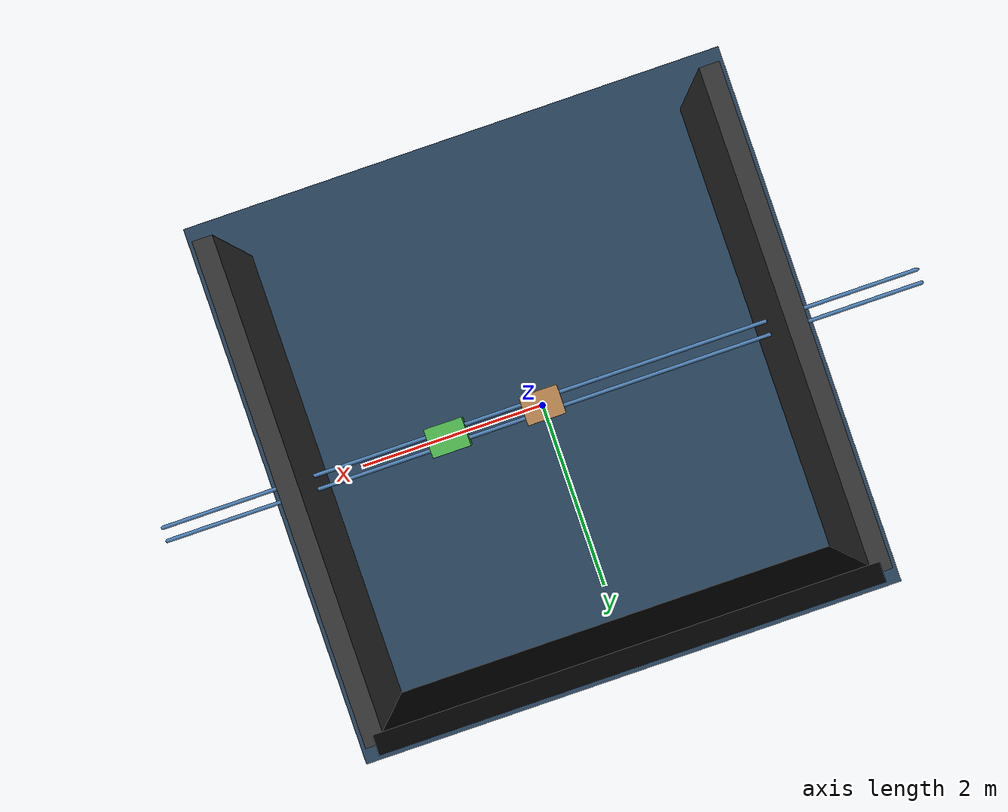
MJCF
<mujoco model="cart">

    <option timestep="0.01" impratio="10" iterations="1" ls_iterations="20">
        <flag contact="enable" gravity="enable" eulerdamp="disable"/>
    </option>

    <!--  reduce contact computation for mjx -->
     <custom>
        <numeric data="15" name="max_contact_points"/>
        <numeric data="15" name="max_geom_pairs"/>
      </custom>

    <visual>
        <headlight ambient=".4 .4 .4" diffuse=".8 .8 .8" specular="0.1 0.1 0.1"/>
        <map znear=".01"/>
        <quality shadowsize="2048"/>
    </visual>

    <asset>
        <texture name="skybox" type="skybox" builtin="gradient" rgb1=".4 .6 .8" rgb2="0 0 0"
                 width="800" height="800" mark="random" markrgb="1 1 1"/>
    </asset>

    <asset>
        <texture name="grid" type="2d" builtin="checker" rgb1=".1 .2 .3" rgb2=".2 .3 .4" width="300" height="300" mark="edge" markrgb=".2 .3 .4"/>
        <material name="grid" texture="grid" texrepeat="1 1" texuniform="true" reflectance=".2"/>
        <material name="self" rgba=".7 .5 .3 1"/>
        <material name="cart2_material" rgba=".3 .7 .3 1"/> <!-- Different color for second cart -->
        <material name="decoration" rgba=".3 .5 .7 1"/>
    </asset>

    <worldbody>
        <light name="light" pos="0 0 6"/>
        <camera name="fixed" pos="0 -4 1" zaxis="0 -1 0"/>
        <camera name="lookatcart" mode="targetbody" target="cart1" pos="0 -2 2"/>
        <geom name="floor" pos="0 0 -.05" size="3 3 .2" type="plane" material="grid"/>

        <!-- Rails for visual guidance -->
        <body name="rails">
            <geom name="rail1" type="capsule" pos="0  .07 0.5" zaxis="1 0 0" size="0.02 4" material="decoration"/>
            <geom name="rail2" type="capsule" pos="0 -.07 0.5" zaxis="1 0 0" size="0.02 4" material="decoration"/>
        </body>

        <!-- First Cart -->
        <body name="cart1" pos="0 0 0.5">
            <joint name="slider1" type="slide" limited="false" axis="1 0 0" range="-1.8 1.8"/>
            <geom name="cart_geom1" type="box" size="0.2 0.15 0.1" material="self" mass="1" contype="1" conaffinity="1"/>
        </body>

        <!-- Second Cart -->
        <body name="cart2" pos="1 0 0.5"> <!-- Positioned slightly apart -->
            <joint name="slider2" type="slide" limited="false" axis="1 0 0" range="-1.8 1.8"/>
            <geom name="cart_geom2" type="box" size="0.2 0.15 0.1" material="cart2_material" mass="1" contype="1" conaffinity="1"/>
        </body>

            <!-- Containing walls -->
        <body name="wall_north" pos="0 2.5 0.4">
          <geom type="box" size="2.5 0.1 0.8" rgba="0 0 0 1"/>
        </body>
        <body name="wall_east" pos="2.5 0 0.4">
          <geom type="box" size="0.1 2.5 0.8" rgba="0.2 0.2 0.2 1"/>
        </body>
        <body name="wall_west" pos="-2.5 0 0.4">
          <geom type="box" size="0.1 2.5 0.8" rgba="0.2 0.2 0.2 1"/>
        </body>

    </worldbody>

    <contact>
        <exclude body1="rails" body2="cart1"/>
        <exclude body1="rails" body2="cart2"/>
    </contact>

    <actuator>
        <motor name="slide1" joint="slider1" gear="10" ctrllimited="false" ctrlrange="-1 1"/>
        <motor name="slide2" joint="slider2" gear="10" ctrllimited="false" ctrlrange="-1 1"/>
    </actuator>

</mujoco>
